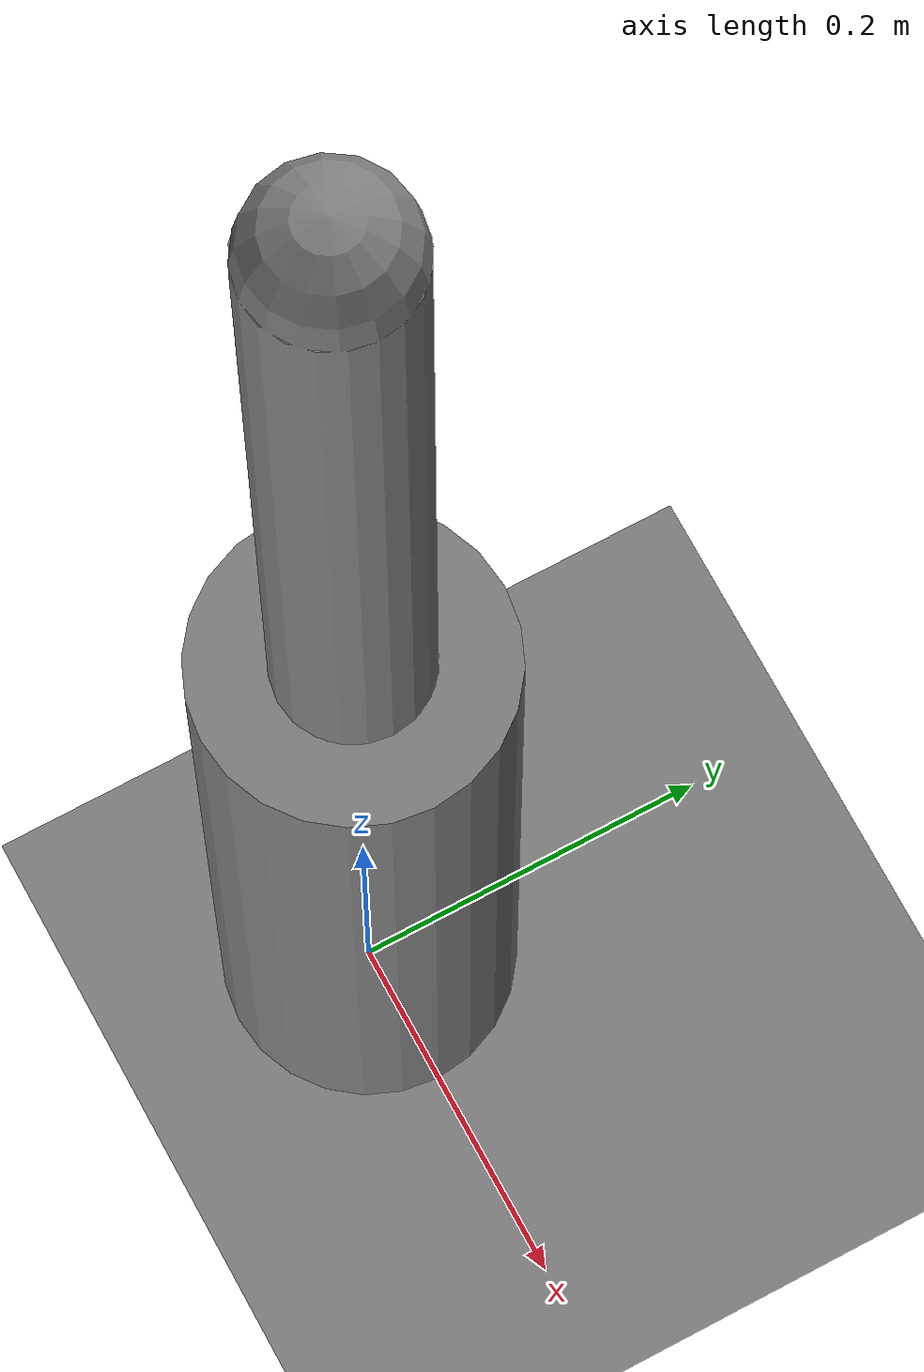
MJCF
<mujoco model="minimal_hinge">
  <compiler angle="radian" autolimits="true"/>
  <option timestep="0.002" gravity="0 0 -9.81"/>
  <worldbody>
    <light pos="0 -1 2"/>
    <geom name="floor" type="plane" size="2 2 0.1"/>
    <body name="pedestal" pos="0 0 0.25">
      <geom type="cylinder" size="0.08 0.25" mass="1"/>
      <body name="link" pos="0 0 0.25">
        <joint name="hinge" type="hinge" axis="0 1 0" range="-1.57 1.57" damping="0.1"/>
        <geom type="capsule" fromto="0 0 0 0 0 0.5" size="0.04" mass="0.5"/>
      </body>
    </body>
  </worldbody>
  <actuator>
    <motor name="hinge_motor" joint="hinge" ctrllimited="true" ctrlrange="-2 2"/>
  </actuator>
</mujoco>
